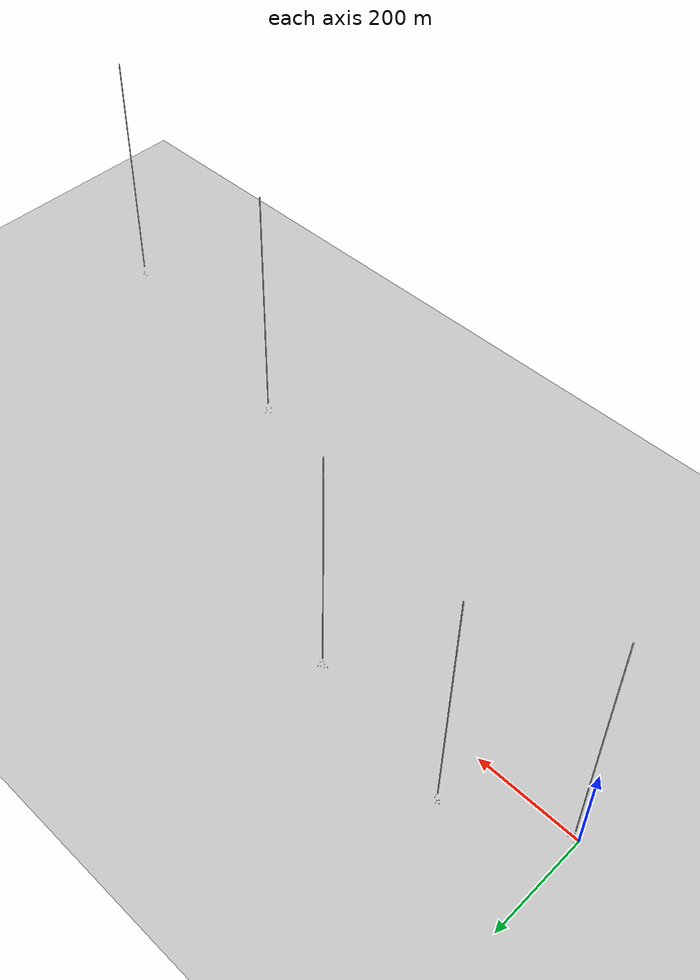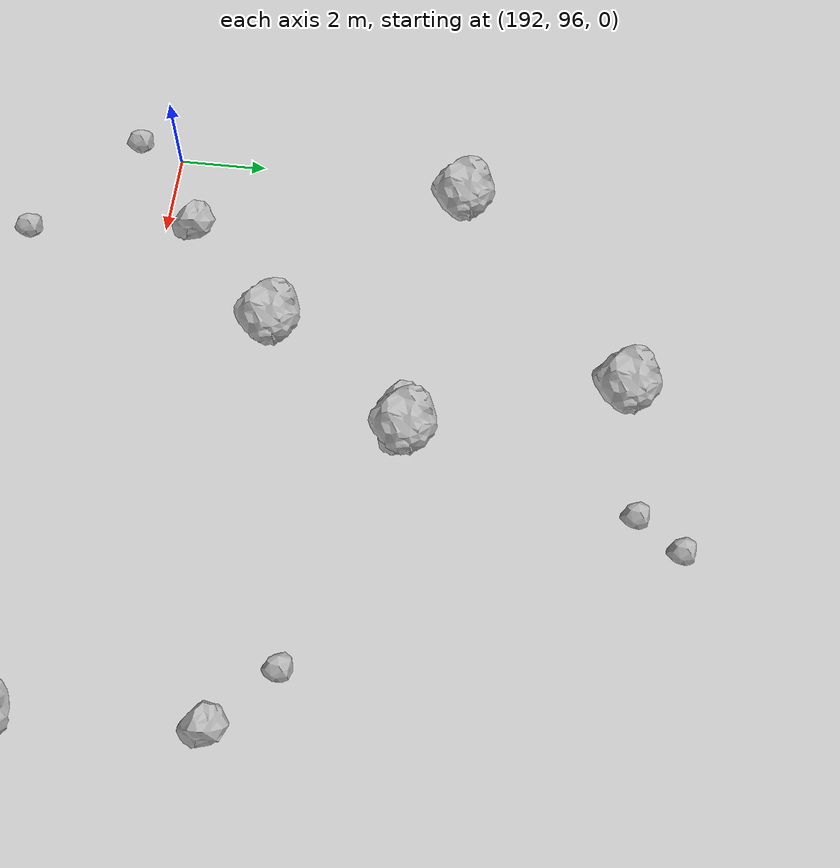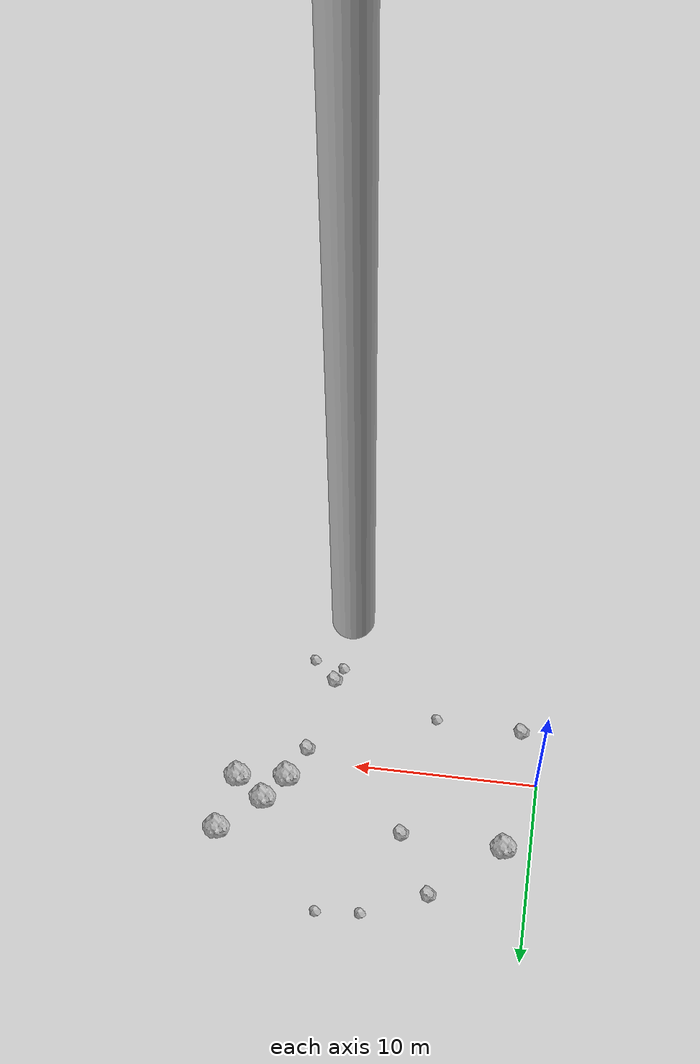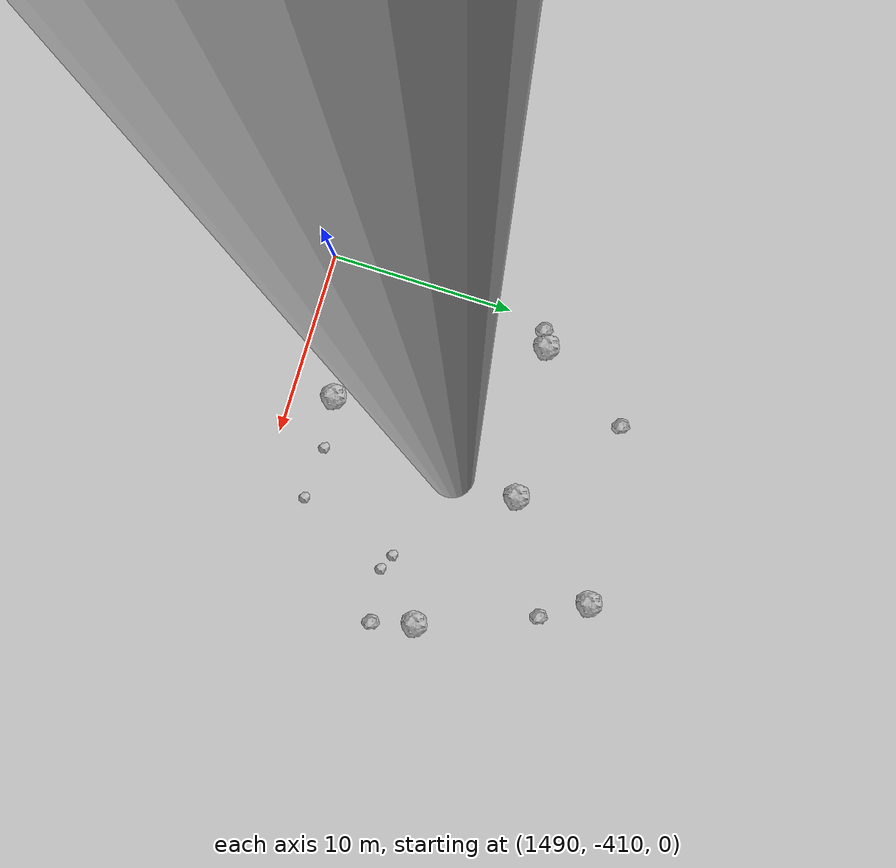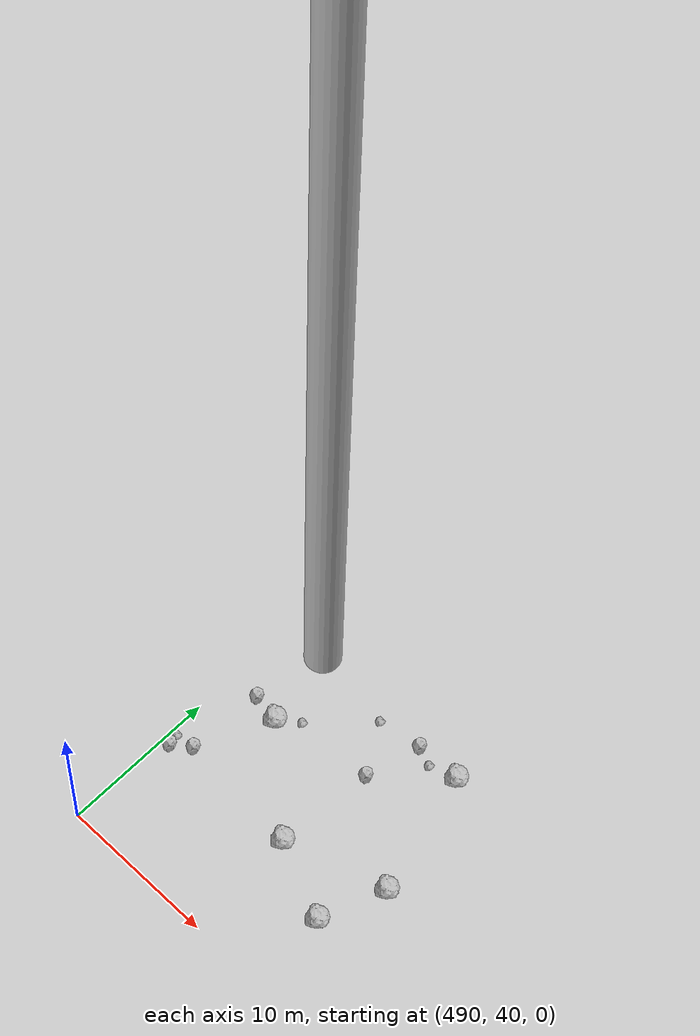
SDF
<?xml version="1.0" ?>
<sdf version="1.6">
  <world name="default">

    <include>
      <uri>model://custom_ground</uri>
    </include>

    <include>
      <uri>model://sun</uri>
    </include>

    <spherical_coordinates>
      <surface_model>EARTH_WGS84</surface_model>
      <latitude_deg>38.161479</latitude_deg>
      <longitude_deg>-122.454630</longitude_deg>
      <elevation>488.0</elevation>
      <heading_deg>90</heading_deg>
    </spherical_coordinates>

    <model name="rock1_0_0">
      <include>
        <uri>model://rock1</uri>
        <pose>1.474282493600736 3.8487280415859324 0.5 0 0 0</pose>
      </include>
    </model>
    <model name="rock1_0_1">
      <include>
        <uri>model://rock1</uri>
        <pose>17.138932291254626 4.4894451439034775 0.5 0 0 0</pose>
      </include>
    </model>
    <model name="rock1_0_2">
      <include>
        <uri>model://rock1</uri>
        <pose>16.406320610623098 1.3632877071631349 0.5 0 0 0</pose>
      </include>
    </model>
    <model name="rock1_0_3">
      <include>
        <uri>model://rock1</uri>
        <pose>13.713126652426082 1.0732800148195754 0.5 0 0 0</pose>
      </include>
    </model>
    <model name="rock1_0_4">
      <include>
        <uri>model://rock1</uri>
        <pose>14.863052546249406 2.486805968549465 0.5 0 0 0</pose>
      </include>
    </model>
    <model name="rock2_0_0">
      <include>
        <uri>model://rock2</uri>
        <pose>7.092563446497671 3.6240535282915936 0.3 0 0 0</pose>
      </include>
    </model>
    <model name="rock2_0_1">
      <include>
        <uri>model://rock2</uri>
        <pose>11.759527763121227 -4.946606936426088 0.3 0 0 0</pose>
      </include>
    </model>
    <model name="rock2_0_2">
      <include>
        <uri>model://rock2</uri>
        <pose>12.774245039777137 -0.7044191423051256 0.3 0 0 0</pose>
      </include>
    </model>
    <model name="rock2_0_3">
      <include>
        <uri>model://rock2</uri>
        <pose>1.081194094670228 -3.037306555640682 0.3 0 0 0</pose>
      </include>
    </model>
    <model name="rock2_0_4">
      <include>
        <uri>model://rock2</uri>
        <pose>5.252089606818487 6.912452394365388 0.3 0 0 0</pose>
      </include>
    </model>
    <model name="rock3_0_0">
      <include>
        <uri>model://rock3</uri>
        <pose>8.768502988094012 8.325237579901756 0.2 0 0 0</pose>
      </include>
    </model>
    <model name="rock3_0_1">
      <include>
        <uri>model://rock3</uri>
        <pose>12.946763697639698 -6.071918432442929 0.2 0 0 0</pose>
      </include>
    </model>
    <model name="rock3_0_2">
      <include>
        <uri>model://rock3</uri>
        <pose>11.182367992664808 8.485401527525035 0.2 0 0 0</pose>
      </include>
    </model>
    <model name="rock3_0_3">
      <include>
        <uri>model://rock3</uri>
        <pose>5.803711841293113 -3.2672008754205457 0.2 0 0 0</pose>
      </include>
    </model>
    <model name="rock3_0_4">
      <include>
        <uri>model://rock3</uri>
        <pose>11.310808343533221 -5.7237377583817795 0.2 0 0 0</pose>
      </include>
    </model>
    <model name="rock1_1_0">
      <include>
        <uri>model://rock1</uri>
        <pose>196.3220440964385 98.76967457115497 0.5 0 0 0</pose>
      </include>
    </model>
    <model name="rock1_1_1">
      <include>
        <uri>model://rock1</uri>
        <pose>192.52433344502265 102.72368336024189 0.5 0 0 0</pose>
      </include>
    </model>
    <model name="rock1_1_2">
      <include>
        <uri>model://rock1</uri>
        <pose>198.6743393512945 102.02100353885866 0.5 0 0 0</pose>
      </include>
    </model>
    <model name="rock1_1_3">
      <include>
        <uri>model://rock1</uri>
        <pose>205.7944141015762 94.62421176832639 0.5 0 0 0</pose>
      </include>
    </model>
    <model name="rock1_1_4">
      <include>
        <uri>model://rock1</uri>
        <pose>197.1764356828459 106.67509456976254 0.5 0 0 0</pose>
      </include>
    </model>
    <model name="rock2_1_0">
      <include>
        <uri>model://rock2</uri>
        <pose>198.862410853349 102.01862945018291 0.3 0 0 0</pose>
      </include>
    </model>
    <model name="rock2_1_1">
      <include>
        <uri>model://rock2</uri>
        <pose>205.47214745281013 98.96721248965812 0.3 0 0 0</pose>
      </include>
    </model>
    <model name="rock2_1_2">
      <include>
        <uri>model://rock2</uri>
        <pose>198.0740801623989 101.90150903826259 0.3 0 0 0</pose>
      </include>
    </model>
    <model name="rock2_1_3">
      <include>
        <uri>model://rock2</uri>
        <pose>206.45764962987994 94.67976666990728 0.3 0 0 0</pose>
      </include>
    </model>
    <model name="rock2_1_4">
      <include>
        <uri>model://rock2</uri>
        <pose>193.89527295905006 96.67195914838175 0.3 0 0 0</pose>
      </include>
    </model>
    <model name="rock3_1_0">
      <include>
        <uri>model://rock3</uri>
        <pose>200.81863038810178 107.96210157162234 0.2 0 0 0</pose>
      </include>
    </model>
    <model name="rock3_1_1">
      <include>
        <uri>model://rock3</uri>
        <pose>200.1233895631656 106.99412782493215 0.2 0 0 0</pose>
      </include>
    </model>
    <model name="rock3_1_2">
      <include>
        <uri>model://rock3</uri>
        <pose>191.63562861439 94.93729264763759 0.2 0 0 0</pose>
      </include>
    </model>
    <model name="rock3_1_3">
      <include>
        <uri>model://rock3</uri>
        <pose>194.31897645433378 92.86850045896023 0.2 0 0 0</pose>
      </include>
    </model>
    <model name="rock3_1_4">
      <include>
        <uri>model://rock3</uri>
        <pose>204.14288231028428 100.16520200960309 0.2 0 0 0</pose>
      </include>
    </model>
    <model name="rock1_2_0">
      <include>
        <uri>model://rock1</uri>
        <pose>504.6147827474332 45.14416395602361 0.5 0 0 0</pose>
      </include>
    </model>
    <model name="rock1_2_1">
      <include>
        <uri>model://rock1</uri>
        <pose>499.7494818545139 47.24093722120406 0.5 0 0 0</pose>
      </include>
    </model>
    <model name="rock1_2_2">
      <include>
        <uri>model://rock1</uri>
        <pose>504.2820287060947 57.23851657794719 0.5 0 0 0</pose>
      </include>
    </model>
    <model name="rock1_2_3">
      <include>
        <uri>model://rock1</uri>
        <pose>493.9226773652332 52.49060090626641 0.5 0 0 0</pose>
      </include>
    </model>
    <model name="rock1_2_4">
      <include>
        <uri>model://rock1</uri>
        <pose>506.21928765662386 49.253312942796995 0.5 0 0 0</pose>
      </include>
    </model>
    <model name="rock2_2_0">
      <include>
        <uri>model://rock2</uri>
        <pose>491.6961656981497 47.82969704280329 0.3 0 0 0</pose>
      </include>
    </model>
    <model name="rock2_2_1">
      <include>
        <uri>model://rock2</uri>
        <pose>501.2647259905313 57.28063897409244 0.3 0 0 0</pose>
      </include>
    </model>
    <model name="rock2_2_2">
      <include>
        <uri>model://rock2</uri>
        <pose>490.5520453460562 46.976058940808265 0.3 0 0 0</pose>
      </include>
    </model>
    <model name="rock2_2_3">
      <include>
        <uri>model://rock2</uri>
        <pose>492.0196474796331 52.8638544467703 0.3 0 0 0</pose>
      </include>
    </model>
    <model name="rock2_2_4">
      <include>
        <uri>model://rock2</uri>
        <pose>500.29206514314654 53.67760921594467 0.3 0 0 0</pose>
      </include>
    </model>
    <model name="rock3_2_0">
      <include>
        <uri>model://rock3</uri>
        <pose>502.5086875333234 56.716286195191685 0.2 0 0 0</pose>
      </include>
    </model>
    <model name="rock3_2_1">
      <include>
        <uri>model://rock3</uri>
        <pose>490.43268758392725 47.65313935445866 0.2 0 0 0</pose>
      </include>
    </model>
    <model name="rock3_2_2">
      <include>
        <uri>model://rock3</uri>
        <pose>495.18921937405344 53.46709479387517 0.2 0 0 0</pose>
      </include>
    </model>
    <model name="rock3_2_3">
      <include>
        <uri>model://rock3</uri>
        <pose>504.1696173708318 57.35401203012954 0.2 0 0 0</pose>
      </include>
    </model>
    <model name="rock3_2_4">
      <include>
        <uri>model://rock3</uri>
        <pose>498.4355438900022 56.79111605207586 0.2 0 0 0</pose>
      </include>
    </model>
    <model name="rock1_3_0">
      <include>
        <uri>model://rock1</uri>
        <pose>1006.4229447472625 -301.1417469997123 0.5 0 0 0</pose>
      </include>
    </model>
    <model name="rock1_3_1">
      <include>
        <uri>model://rock1</uri>
        <pose>995.0876782164255 -305.9640421851898 0.5 0 0 0</pose>
      </include>
    </model>
    <model name="rock1_3_2">
      <include>
        <uri>model://rock1</uri>
        <pose>995.3436272254002 -305.82623679231006 0.5 0 0 0</pose>
      </include>
    </model>
    <model name="rock1_3_3">
      <include>
        <uri>model://rock1</uri>
        <pose>997.9681442724853 -294.927660986629 0.5 0 0 0</pose>
      </include>
    </model>
    <model name="rock1_3_4">
      <include>
        <uri>model://rock1</uri>
        <pose>1000.7054556564369 -308.4726458529089 0.5 0 0 0</pose>
      </include>
    </model>
    <model name="rock2_3_0">
      <include>
        <uri>model://rock2</uri>
        <pose>1004.441520532813 -297.83040769315954 0.3 0 0 0</pose>
      </include>
    </model>
    <model name="rock2_3_1">
      <include>
        <uri>model://rock2</uri>
        <pose>997.5531128425084 -293.551883751033 0.3 0 0 0</pose>
      </include>
    </model>
    <model name="rock2_3_2">
      <include>
        <uri>model://rock2</uri>
        <pose>1002.7780694419505 -307.3965088135766 0.3 0 0 0</pose>
      </include>
    </model>
    <model name="rock2_3_3">
      <include>
        <uri>model://rock2</uri>
        <pose>998.2447716530634 -290.8337614309602 0.3 0 0 0</pose>
      </include>
    </model>
    <model name="rock2_3_4">
      <include>
        <uri>model://rock2</uri>
        <pose>999.1358086969175 -290.61682164532334 0.3 0 0 0</pose>
      </include>
    </model>
    <model name="rock3_3_0">
      <include>
        <uri>model://rock3</uri>
        <pose>996.9778290429248 -293.0615505873953 0.2 0 0 0</pose>
      </include>
    </model>
    <model name="rock3_3_1">
      <include>
        <uri>model://rock3</uri>
        <pose>1002.1172629538962 -298.1931756586416 0.2 0 0 0</pose>
      </include>
    </model>
    <model name="rock3_3_2">
      <include>
        <uri>model://rock3</uri>
        <pose>1005.0253626081902 -299.0089603690452 0.2 0 0 0</pose>
      </include>
    </model>
    <model name="rock3_3_3">
      <include>
        <uri>model://rock3</uri>
        <pose>1000.1834590542865 -290.92301435774664 0.2 0 0 0</pose>
      </include>
    </model>
    <model name="rock3_3_4">
      <include>
        <uri>model://rock3</uri>
        <pose>991.592783641518 -297.6126897301026 0.2 0 0 0</pose>
      </include>
    </model>
    <model name="rock1_4_0">
      <include>
        <uri>model://rock1</uri>
        <pose>1504.0344377527226 -391.16495125367356 0.5 0 0 0</pose>
      </include>
    </model>
    <model name="rock1_4_1">
      <include>
        <uri>model://rock1</uri>
        <pose>1499.6665317340846 -396.63327353743193 0.5 0 0 0</pose>
      </include>
    </model>
    <model name="rock1_4_2">
      <include>
        <uri>model://rock1</uri>
        <pose>1507.8807494716168 -399.8800191659084 0.5 0 0 0</pose>
      </include>
    </model>
    <model name="rock1_4_3">
      <include>
        <uri>model://rock1</uri>
        <pose>1497.405519191723 -407.7350977818174 0.5 0 0 0</pose>
      </include>
    </model>
    <model name="rock1_4_4">
      <include>
        <uri>model://rock1</uri>
        <pose>1491.4021163574896 -397.49747248934085 0.5 0 0 0</pose>
      </include>
    </model>
    <model name="rock2_4_0">
      <include>
        <uri>model://rock2</uri>
        <pose>1508.4658012905609 -402.15242122785156 0.3 0 0 0</pose>
      </include>
    </model>
    <model name="rock2_4_1">
      <include>
        <uri>model://rock2</uri>
        <pose>1491.0232183276655 -403.8533592108998 0.3 0 0 0</pose>
      </include>
    </model>
    <model name="rock2_4_2">
      <include>
        <uri>model://rock2</uri>
        <pose>1490.5011609130268 -397.86184824782526 0.3 0 0 0</pose>
      </include>
    </model>
    <model name="rock2_4_3">
      <include>
        <uri>model://rock2</uri>
        <pose>1505.4908946075166 -393.5463118296635 0.3 0 0 0</pose>
      </include>
    </model>
    <model name="rock2_4_4">
      <include>
        <uri>model://rock2</uri>
        <pose>1494.2849904502928 -392.33730960686194 0.3 0 0 0</pose>
      </include>
    </model>
    <model name="rock3_4_0">
      <include>
        <uri>model://rock3</uri>
        <pose>1500.177801772362 -407.42709900239527 0.2 0 0 0</pose>
      </include>
    </model>
    <model name="rock3_4_1">
      <include>
        <uri>model://rock3</uri>
        <pose>1505.5397408071115 -402.53085671933087 0.2 0 0 0</pose>
      </include>
    </model>
    <model name="rock3_4_2">
      <include>
        <uri>model://rock3</uri>
        <pose>1504.6561308145294 -402.1357532736421 0.2 0 0 0</pose>
      </include>
    </model>
    <model name="rock3_4_3">
      <include>
        <uri>model://rock3</uri>
        <pose>1493.2320162966628 -401.5556280069675 0.2 0 0 0</pose>
      </include>
    </model>
    <model name="rock3_4_4">
      <include>
        <uri>model://rock3</uri>
        <pose>1503.0798127274284 -407.6440875235125 0.2 0 0 0</pose>
      </include>
    </model>

    <model name="cylinder_1">
      <static>true</static>
      <link name="link">
        <visual name="visual">
          <geometry>
            <cylinder>
              <radius>1</radius>
              <length>500</length>
            </cylinder>
          </geometry>
        </visual>
      </link>
      <pose>10 0 270 0 0 0</pose>
    </model>

    <model name="cylinder_2">
      <static>true</static>
      <link name="link">
        <visual name="visual">
          <geometry>
            <cylinder>
              <radius>1</radius>
              <length>500</length>
            </cylinder>
          </geometry>
        </visual>
      </link>
      <pose>200 100 270 0 0 0</pose>
    </model>

    <model name="cylinder_3">
      <static>true</static>
      <link name="link">
        <visual name="visual">
          <geometry>
            <cylinder>
              <radius>1</radius>
              <length>500</length>
            </cylinder>
          </geometry>
        </visual>
      </link>
      <pose>500 50 270 0 0 0</pose>
    </model>

    <model name="cylinder_4">
      <static>true</static>
      <link name="link">
        <visual name="visual">
          <geometry>
            <cylinder>
              <radius>1</radius>
              <length>500</length>
            </cylinder>
          </geometry>
        </visual>
      </link>
      <pose>1000 -300 270 0 0 0</pose>
    </model>

    <model name="cylinder_5">
      <static>true</static>
      <link name="link">
        <visual name="visual">
          <geometry>
            <cylinder>
              <radius>1</radius>
              <length>500</length>
            </cylinder>
          </geometry>
        </visual>
      </link>
      <pose>1500 -400 270 0 0 0</pose>
    </model>

  </world>
</sdf>

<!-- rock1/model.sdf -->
<sdf version="1.6">
  <model name="rock1">
    <static>true</static> <!-- Set to true if the model should not move -->
    <pose>0 0 0 0 0 0</pose>

    <!--z offset is 0.5 for full scale-->

    <link name="link">
      <collision name="rock1_collision">
        <geometry>
          <mesh>
            <uri>model://meshes/rock1.dae</uri>
          </mesh>
        </geometry>
      </collision>
      <visual name="rock1_visual">
        <geometry>
          <mesh>
            <uri>model://meshes/rock1.dae</uri>
          </mesh>
        </geometry>
        <material>
          <script>
            <uri>model://materials/scripts/sand_pebbles.material</uri>
            <name>custom_ground/Image</name>
          </script>
        </material>
      </visual>
    </link>
  </model>
</sdf>

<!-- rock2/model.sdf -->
<sdf version="1.6">
  <model name="rock2">
    <static>true</static> <!-- Set to true if the model should not move -->
    <pose>0 0 0 0 0 0</pose>

    <!--z offset is 0.3 for full scale-->

    <link name="link">
      <collision name="rock2_collision">
        <geometry>
          <mesh>
            <uri>model://meshes/rock2.dae</uri>
          </mesh>
        </geometry>
      </collision>
      <visual name="rock2_visual">
        <geometry>
          <mesh>
            <uri>model://meshes/rock2.dae</uri>
          </mesh>
        </geometry>
        <material>
          <script>
            <uri>model://materials/scripts/sand_pebbles.material</uri>
            <name>custom_ground/Image</name>
          </script>
        </material>
      </visual>
    </link>
  </model>
</sdf>

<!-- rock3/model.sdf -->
<sdf version="1.6">
  <model name="rock3">
    <static>true</static> <!-- Set to true if the model should not move -->
    <pose>0 0 0 0 0 0</pose>

    <!--z offset is 0.2 for full scale-->

    <link name="link">
      <collision name="rock3_collision">
        <geometry>
          <mesh>
            <uri>model://meshes/rock3.dae</uri>
          </mesh>
        </geometry>
      </collision>
      <visual name="rock3_visual">
        <geometry>
          <mesh>
            <uri>model://meshes/rock3.dae</uri>
          </mesh>
        </geometry>
        <material>
          <script>
            <uri>model://materials/scripts/sand_pebbles.material</uri>
            <name>custom_ground/Image</name>
          </script>
        </material>
      </visual>
    </link>
  </model>
</sdf>

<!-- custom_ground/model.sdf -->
<sdf version="1.6">
  <model name="custom_ground">
    <static>true</static> <!-- Ground is static and immovable -->
    <link name="ground_link">
      <pose>240 0 0 0 0 0</pose> <!-- Position and orientation relative to the world -->
      <!-- Visual Representation -->
      <visual name="ground_visual">
        <geometry>
          <plane>
            <normal>0 0 1</normal> <!-- Upward facing plane -->
            <size>500 500</size> <!-- Size of the plane -->
          </plane>
        </geometry>
        <material>
          <script>
            <uri>model://materials/scripts/sand_pebbles.material</uri>
            <name>custom_ground/Image</name>
          </script>
        </material>
      </visual>

      <!-- Collision Representation -->
      <collision name="ground_collision">
        <geometry>
          <plane>
            <normal>0 0 1</normal>
            <size>100 100</size>
          </plane>
        </geometry>
      </collision>

    </link>
  </model>
</sdf>
